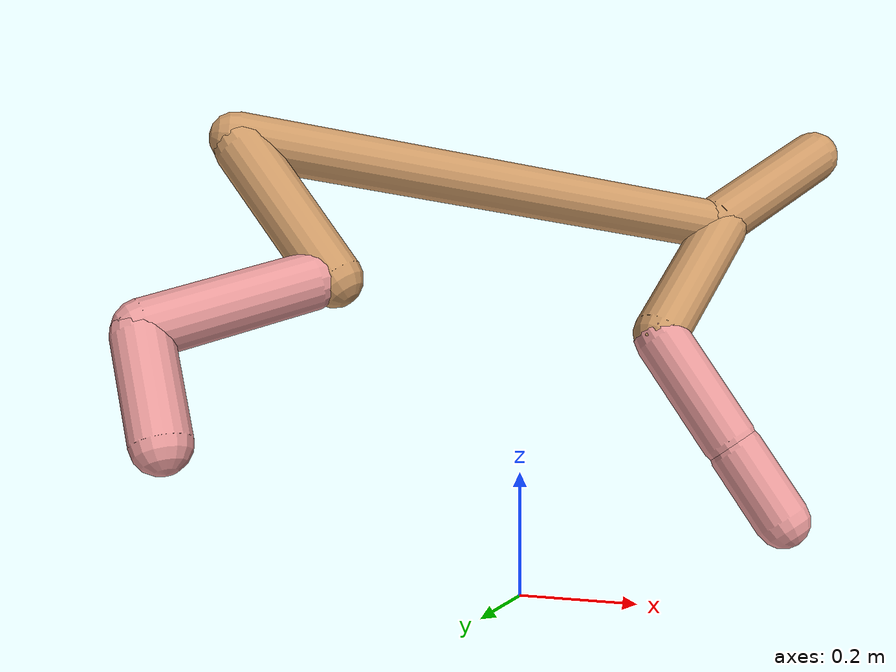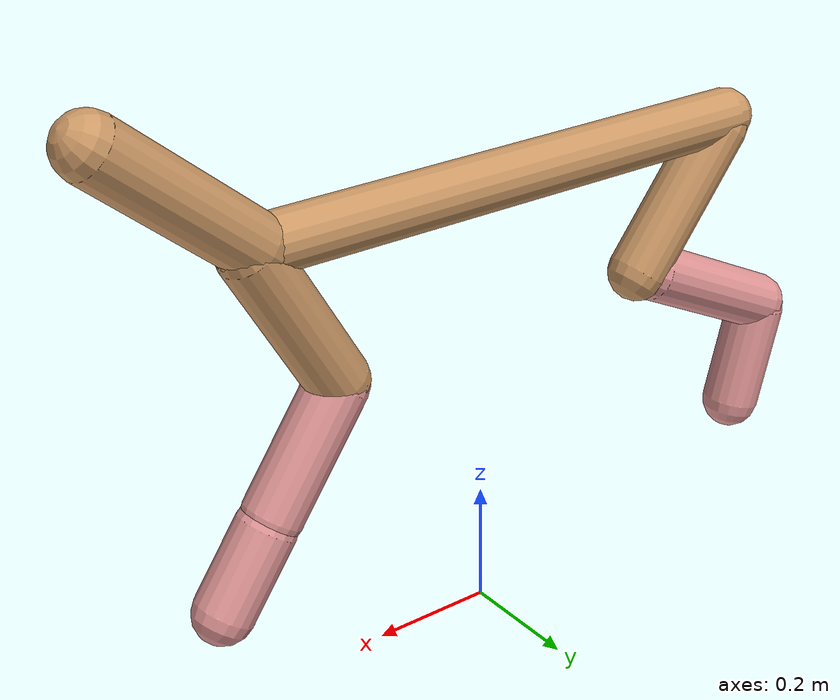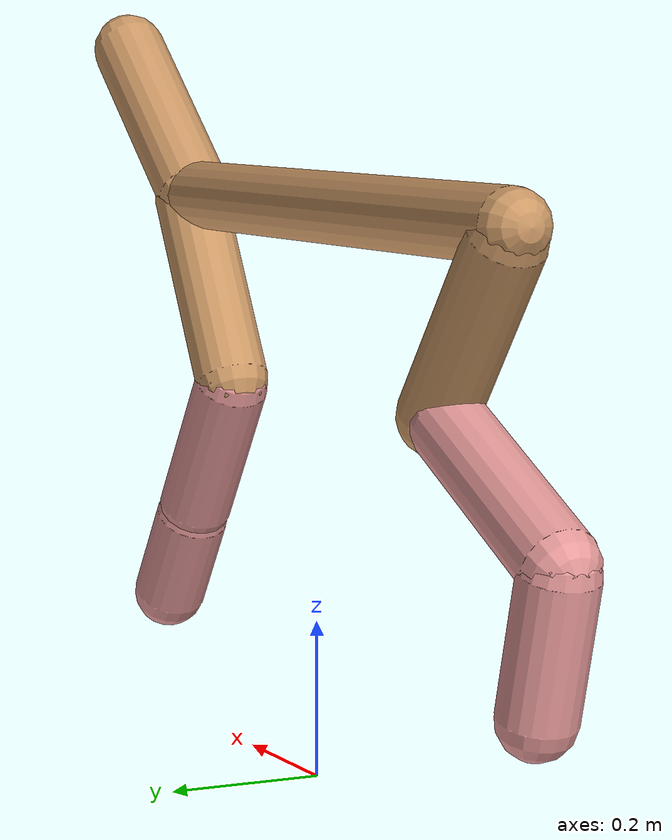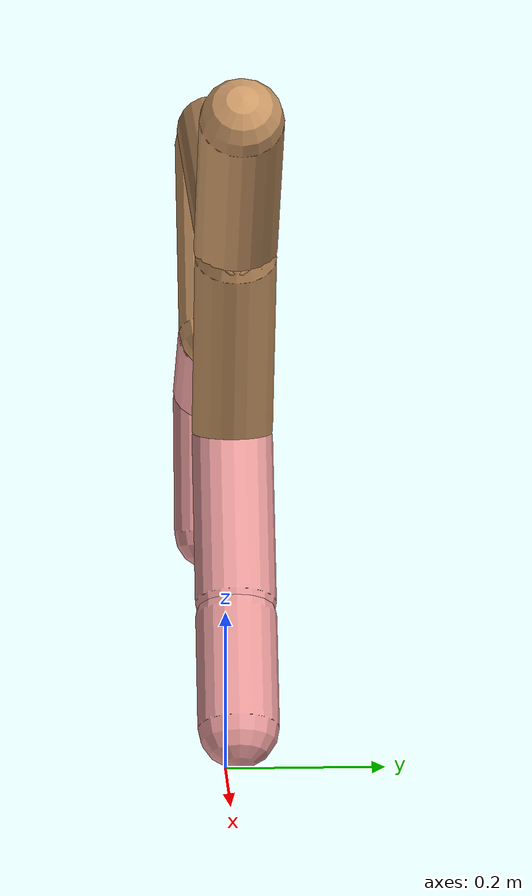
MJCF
<mujoco model="cheetah">
  <compiler angle="radian" coordinate="local" inertiafromgeom="true" settotalmass="14" />
  <default>
    <joint armature=".1" damping=".01" limited="true" solimplimit="0 .8 .03" solreflimit=".02 1" stiffness="8" />
    <geom conaffinity="0" condim="3" contype="1" friction="0.8 .1 .1" rgba="0.8 0.6 .4 1" solimp="0.0 0.8 0.01" solref="0.02 1" />
    <motor ctrllimited="true" ctrlrange="-1 1" />
  </default>
  <size nstack="300000" nuser_geom="1" />
  <option gravity="0 0 -9.81" timestep="0.01" />
  <worldbody>
    <body name="torso" pos="0.0 0.0 0.7271957050747463">
      <joint armature="0" axis="1 0 0" damping="0" limited="false" name="ignorex" pos="0 0 0" stiffness="0" type="slide" />
      <joint armature="0" axis="0 0 1" damping="0" limited="false" name="ignorez" pos="0 0 0" stiffness="0" type="slide" />
      <joint armature="0" axis="0 1 0" damping="0" limited="false" name="ignorey" pos="0 0 0" stiffness="0" type="hinge" />
      <geom fromto="-0.5 0.0 0.0 0.40344757812297727 0.0 0.0" name="torso" size="0.04566855616726212" type="capsule" />
      <geom axisangle="0 1 0 .87" name="head" pos="0.5034475781229772 0.0 0.1" size="0.05012462312688044 0.15" type="capsule" />

      <body name="bthigh" pos="-.5 0 0">
        <joint axis="0 1 0" damping="6" name="bthigh" pos="0 0 0" range="-.52 1.05" stiffness="240" type="hinge" />
        <geom axisangle="0 1 0 -3.8" name="bthigh" pos="0.09456566057153938 0.0 -0.1229353587430012" size="0.048420070552831 0.13608702063764247" type="capsule" />
        <body name="bshin" pos="0.14913132114307875 0.0 -0.23587071748600238">
          <joint axis="0 1 0" damping="4.5" name="bshin" pos="0 0 0" range="-.785 .785" stiffness="180" type="hinge" />
          <geom axisangle="0 1 0 -2.03" name="bshin" pos="-0.13175309197119275 0.0 -0.06587654598559638" rgba="0.9 0.6 0.6 1" size="0.048420070552831 0.1407796765216991" type="capsule" />
          <body name="bfoot" pos="-0.2635061839423855 0.0 -0.13175309197119275">
            <joint axis="0 1 0" damping="3" name="bfoot" pos="0 0 0" range="-.4 .785" stiffness="120" type="hinge" />
            <geom axisangle="0 1 0 -.27" name="bfoot" pos="0.028292755441345147 0.0 -0.09147990926034931" rgba="0.9 0.6 0.6 1" size="0.048420070552831 0.08822193062026477" type="capsule" />
            <inertial mass="10" />
          </body>
        </body>
      </body>
      <body name="fthigh" pos="0.40344757812297727 0.0 0.0">
        <joint axis="0 1 0" damping="4.5" name="fthigh" pos="0 0 0" range="-1.5 0.8" stiffness="180" type="hinge" />
        <geom axisangle="0 1 0 .52" name="fthigh" pos="-0.07190639748763576 0.0 -0.12326810997880415" size="0.04905932275680903 0.13678350290265825" type="capsule" />
        <body name="fshin" pos="-0.14381279497527152 0.0 -0.2465362199576083">
          <joint axis="0 1 0" damping="3" name="fshin" pos="0 0 0" range="-1.2 1.1" stiffness="120" type="hinge" />
          <geom axisangle="0 1 0 -.6" name="fshin" pos="0.06676550189665116 0.0 -0.09244454108767083" rgba="0.9 0.6 0.6 1" size="0.04905932275680903 0.10901542336602836" type="capsule" />
          <body name="ffoot" pos="0.13353100379330232 0.0 -0.18488908217534167">
            <joint axis="0 1 0" damping="1.5" name="ffoot" pos="0 0 0" range="-3.1 -0.3" stiffness="60" type="hinge" />
            <geom axisangle="0 1 0 -.6" name="ffoot" pos="0.04607681995598373 0.0 -0.07167505326486359" rgba="0.9 0.6 0.6 1" size="0.04905932275680903 0.07199131731718855" type="capsule" />
            <inertial mass="10" />
          </body>
        </body>
      </body>
    </body>
  </worldbody>
  <actuator>
    <motor gear="120" joint="bthigh" name="bthigh" />
    <motor gear="90" joint="bshin" name="bshin" />
    <motor gear="60" joint="bfoot" name="bfoot" />
    <motor gear="120" joint="fthigh" name="fthigh" />
    <motor gear="60" joint="fshin" name="fshin" />
    <motor gear="30" joint="ffoot" name="ffoot" />
  </actuator>
</mujoco>
